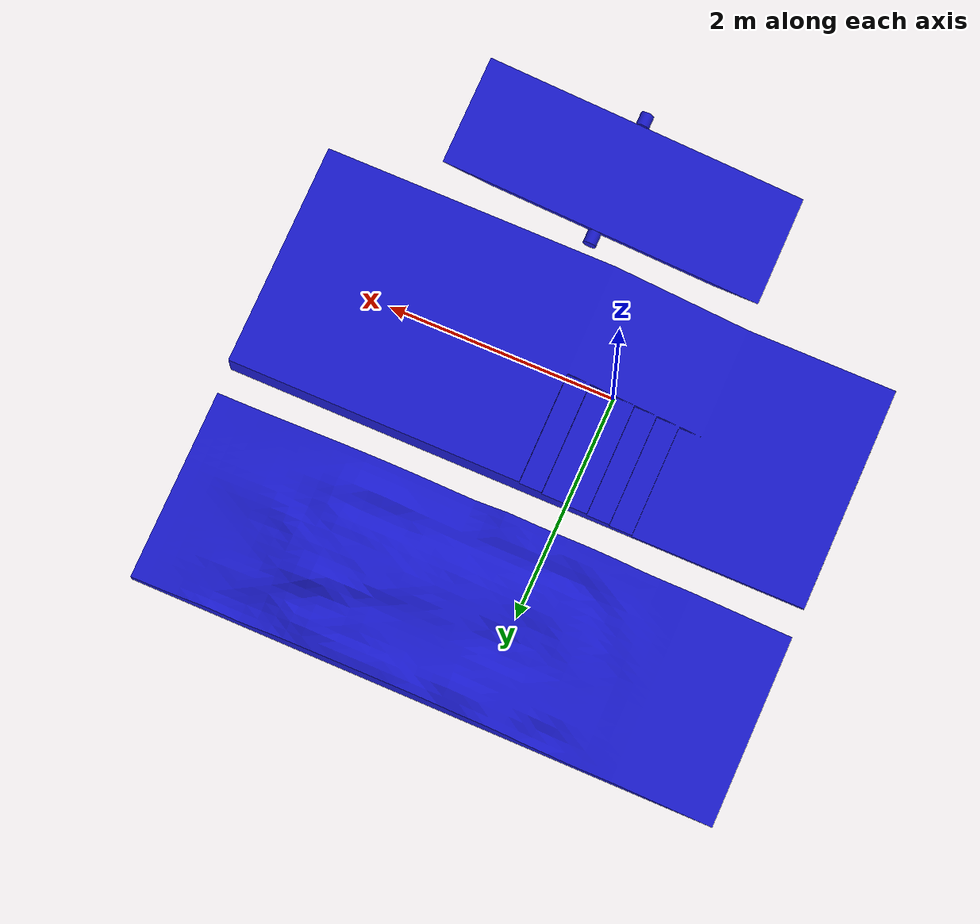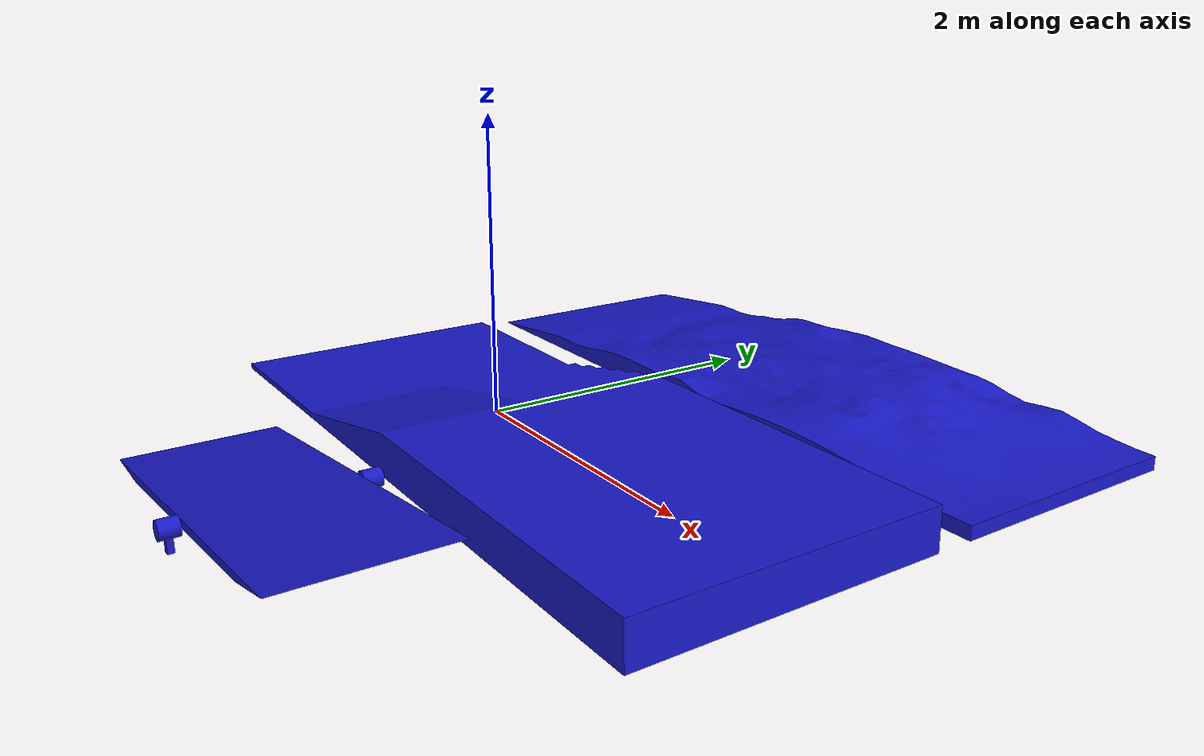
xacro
<?xml version="1.0"?>
<!-- created with Phobos 1.0.1 "Capricious Choutengan" -->
  <robot xmlns:xacro="http://www.ros.org/wiki/xacro" name="Polygon">
    <link name="link_Cube">
      <inertial>
        <origin xyz="-0.04492 0.00536 0" rpy="0 0 0"/>
        <mass value="10.0"/>
        <inertia ixx="0.82308" ixy="0" ixz="0" iyy="5.19654" iyz="0" izz="5.94254"/>
      </inertial>
      <visual name="Cube">
        <origin xyz="-0.04492 0.00536 0" rpy="-1.5708 0 0"/>
        <geometry>
          <mesh filename="package://arc_description/meshes/Polygon/stl/Cube.001.stl" scale="1.0 1.0 1.0"/>
        </geometry>
        <material name="black"/>
      </visual>
      <collision name="Cube">
        <origin xyz="-0.04492 0.00536 0" rpy="-1.5708 0 0"/>
        <geometry>
          <mesh filename="package://arc_description/meshes/Polygon/stl/Cube.099.stl" scale="1.0 1.0 1.0"/>
        </geometry>
        <material name="black"/>
      </collision>
    </link>

    <link name="polygon">
      <inertial>
        <origin xyz="0 0 0.12956" rpy="0 0 0"/>
        <mass value="100.0"/>
        <inertia ixx="32.86259" ixy="0" ixz="0" iyy="205.90488" iyz="0" izz="235.78073"/>
      </inertial>
      <visual name="Cylinder">
        <origin xyz="0.69799 -1.19542 0.04584" rpy="0 0 0"/>
        <geometry>
          <mesh filename="package://arc_description/meshes/Polygon/stl/Cube.002.stl" scale="1.0 1.0 1.0"/>
        </geometry>
        <material name="black"/>
      </visual>
      <visual name="Cylinder2">
        <origin xyz="0.69799 -2.3247 0.04584" rpy="0 0 0"/>
        <geometry>
          <mesh filename="package://arc_description/meshes/Polygon/stl/Cube.003.stl" scale="1.0 1.0 1.0"/>
        </geometry>
        <material name="black"/>
      </visual>
      <visual name="Polygon">
        <origin xyz="0.86451 2.37903 0.04978" rpy="0 0 0"/>
        <geometry>
          <mesh filename="package://arc_description/meshes/Polygon/stl/Plane.001.stl" scale="1.0 1.0 1.0"/>
        </geometry>
        <material name="black"/>
      </visual>
      <visual name="Polygon.002">
        <origin xyz="0 -0.01675 0.06478" rpy="0 0 0"/>
        <geometry>
          <mesh filename="package://arc_description/meshes/Polygon/stl/Plane.002.stl" scale="1.0 1.0 1.0"/>
        </geometry>
        <material name="black"/>
      </visual>
      <collision name="Cylinder">
        <origin xyz="0.69799 -1.19542 0.04584" rpy="0 0 0"/>
        <geometry>
          <mesh filename="package://arc_description/meshes/Polygon/stl/Cube.100.stl" scale="1.0 1.0 1.0"/>
        </geometry>
        <material name="black"/>
      </collision>
      <collision name="Cylinder2">
        <origin xyz="0.69799 -2.3247 0.04584" rpy="0 0 0"/>
        <geometry>
          <mesh filename="package://arc_description/meshes/Polygon/stl/Cube.101.stl" scale="1.0 1.0 1.0"/>
        </geometry>
        <material name="black"/>
      </collision>
      <collision name="Polygon">
        <origin xyz="0.86451 2.37903 0.04978" rpy="0 0 0"/>
        <geometry>
          <mesh filename="package://arc_description/meshes/Polygon/stl/Plane.009.stl" scale="1.0 1.0 1.0"/>
        </geometry>
        <material name="black"/>

      </collision>
      <collision name="Polygon.002">
        <origin xyz="0 -0.01675 0.06478" rpy="0 0 0"/>
        <geometry>
          <mesh filename="package://arc_description/meshes/Polygon/stl/Plane.003.stl" scale="1.0 1.0 1.0"/>
        </geometry>
      </collision>
    </link>

    <joint name="link_Cube_1" type="revolute">
      <origin xyz="0.69799 -1.75948 0.06447" rpy="1.5708 -0.11887 0"/>
      <parent link="polygon"/>
      <child link="link_Cube"/>
      <axis xyz="0 0 1.0"/>
      <limit lower="-3.14" upper="3.14" effort="0" velocity="0"/>
    </joint>

    <material name="black">
      <color rgba="0.1 0.1 0.8 1.0"/>
    </material>

  </robot>
